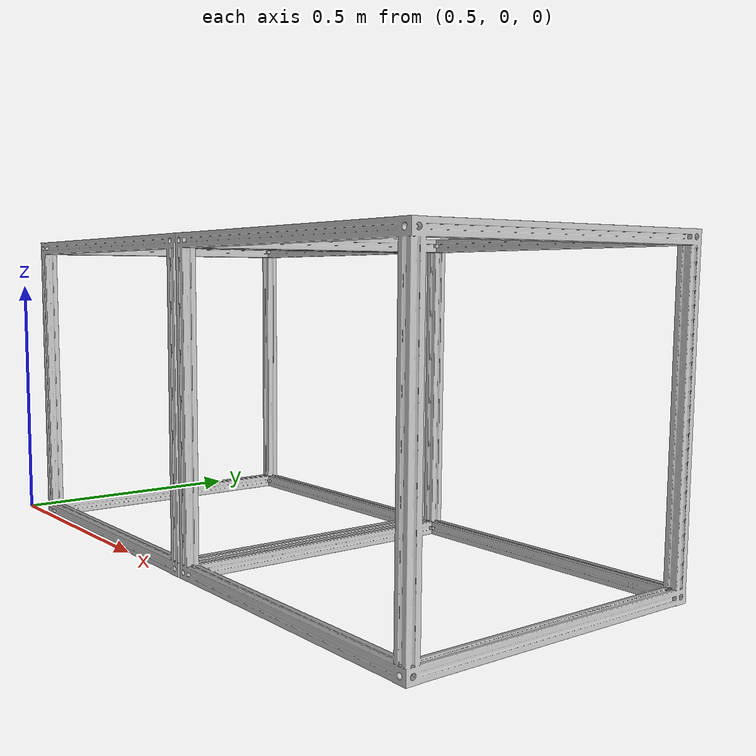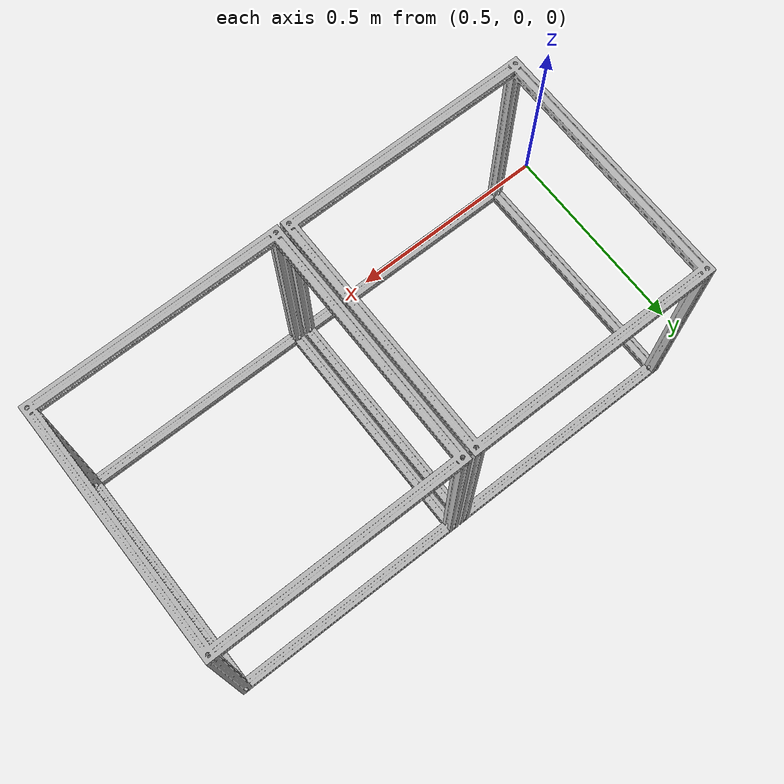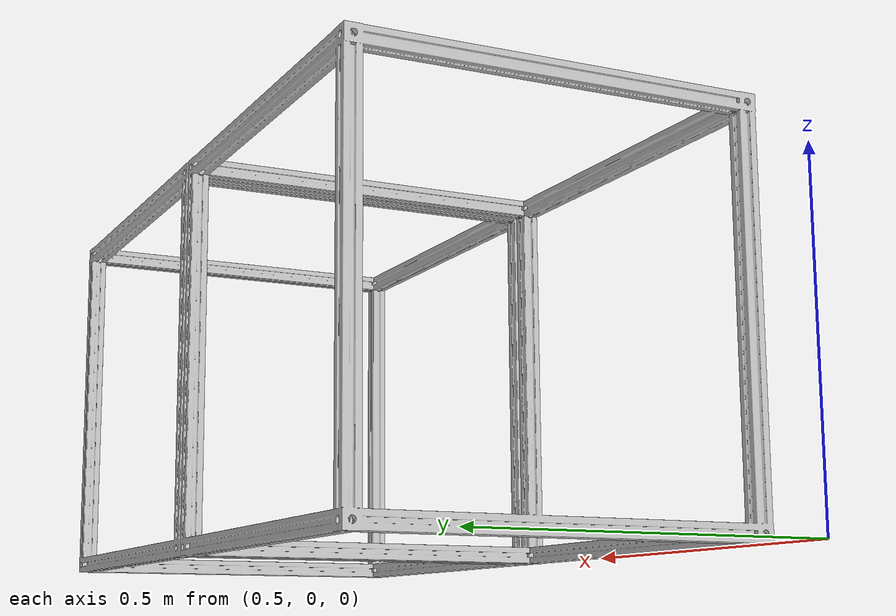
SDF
<sdf version='1.4'>
 <!-- Place Cubes -->
  <model name='cube1'>
   <static>1</static>
   <link name='cube1'>
      <collision name='cube1'>
        <pose>0.6 0 0  0 0 0</pose>
        <geometry>
          <mesh>
            <uri>model://turtlebot3_world/meshes/scube.dae</uri>
            <scale>1 1 1</scale>
          </mesh>
        </geometry>
      </collision>

     <visual name='cube1'>
     <pose>0.6 0 0  0 0 0</pose>
     <geometry>
      <mesh>
       <uri>model://turtlebot3_world/meshes/scube.dae</uri>
       <scale>1 1 1</scale>
      </mesh>
     </geometry>
    </visual>
   </link>
  </model>

  <model name='cube2'>
  <static>1</static>
   <link name='cube2'>
      <collision name='cube2'>
        <pose>1.2 0 0  0 0 0</pose>
        <geometry>
          <mesh>
            <uri>model://turtlebot3_world/meshes/scube.dae</uri>
            <scale>1 1 1</scale>
          </mesh>
        </geometry>
      </collision>

     <visual name='cube2'>
     <pose>1.2 0 0  0 0 0</pose>
     <geometry>
      <mesh>
       <uri>model://turtlebot3_world/meshes/scube.dae</uri>
       <scale>1 1 1</scale>
      </mesh>
     </geometry>
    </visual>
   </link>
 </model>
</sdf>
